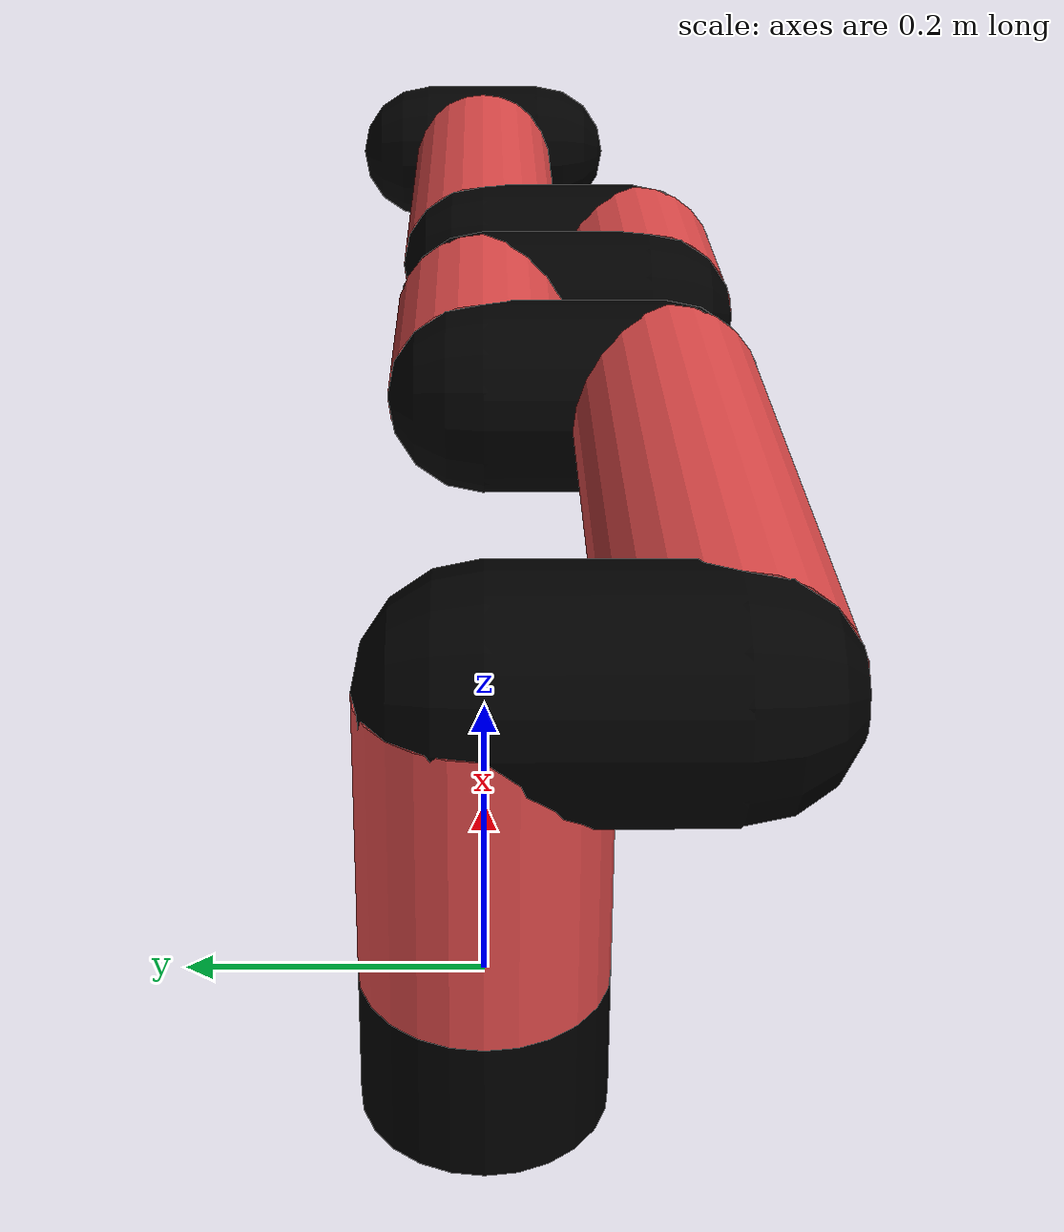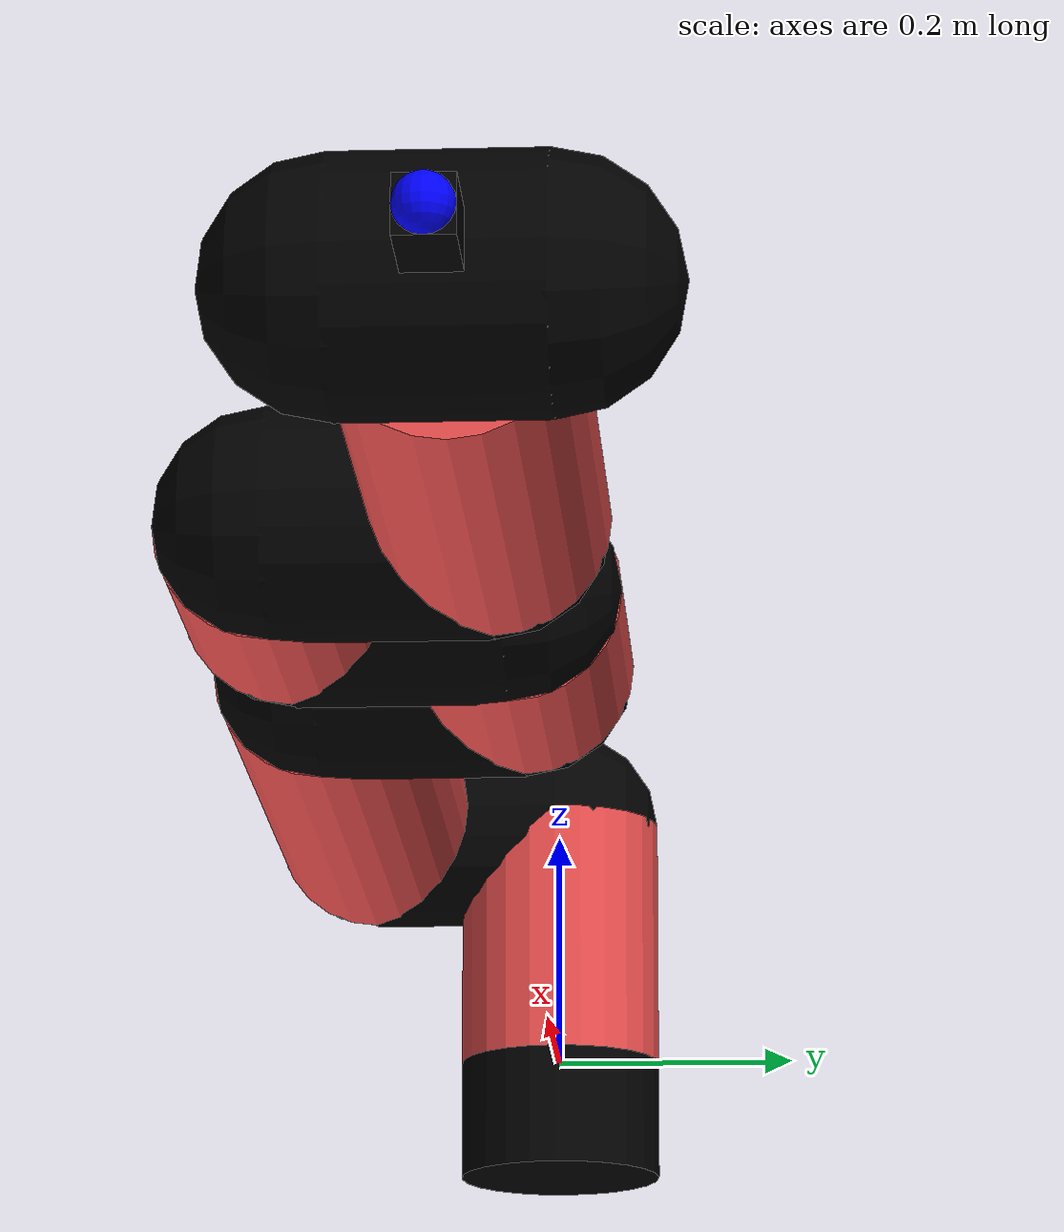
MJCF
<mujoco model="manipulator">
		<compiler angle="degree" coordinate="local" inertiafromgeom="auto" meshdir="meshes/"/>
		<option gravity="0 0 0" integrator="RK4" iterations="30" timestep="0.01"/>

		<default>
		<joint armature="1" limited="true" stiffness="10" damping="15" frictionloss="5.0"/>
		<geom conaffinity="1" condim="3" contype="1" friction=".5 .1 .1" margin="0.002"/>
		<motor ctrllimited="true"/>
		<position ctrllimited="true"/>
		</default>

		<asset>
		<texture builtin="gradient" height="100" rgb1="1.0 1.0 1.0" rgb2="1.0 1.0 1.0" type="skybox" width="100"/>
		<texture builtin="flat" height="32" name="arm_tex" rgb1="0.9 0.3 0.3" type="2d" width="32"/>
		<texture builtin="flat" height="32" name="gripper_tex" rgb1="0.0 0.0 0.0" type="cube" width="32"/>

		<material name="arm_mat" shininess="0.1" specular="0.1" texture="arm_tex"/>
		<material name="gripper_mat" shininess="1" specular="1" texture="gripper_tex"/>
		</asset>

		<worldbody>
		<light cutoff="45" diffuse=".8 .8 .8" dir="0 0.16 -1" directional="false" name="light" pos="0 -2.0 8.0" specular="0.3 0.3 0.3"/>

		<body name="base_link" pos="0 0 -0.1">
		<geom fromto="0 0 0 0 0 0.1" material="arm_mat" name="base_link" rgba="0.0 0.0 0.0 1" size="0.085" type="cylinder"/>
		</body>

		<body name="l1" pos="0 0 0">
<geom fromto="0 0 0 0 0 0.21" material="arm_mat" name="l1" rgba="0.9 0.3 0.3 1" size="0.085" type="cylinder"/>
<geom fromto="0 0 0.21 0 -0.16 0.21" material="arm_mat" name="l1_ex" rgba="0.0 0.0 0.0 1" size="0.085" type="capsule"/>
<joint axis="0 0 1" name="j1" pos="0 0 0" range="-90 90" damping="12.73" frictionloss="6.93"/>

<body name="l2" pos="0 -0.16 0.21">
<geom fromto="0 0 0 0.53 0 0" material="arm_mat" name="l2" rgba="0.9 0.3 0.3 1" size="0.085" type="cylinder"/>
<geom fromto="0.53 0 0 0.53 0.16 0" material="arm_mat" name="l2_ex" rgba="0.0 0.0 0.0 1" size="0.085" type="capsule"/>
<joint axis="0.0 1.0 0.0" name="j2" pos="0 0 0" range="-90 60" damping="14.55" frictionloss="4.9"/>

<body name="l3" pos="0.53 0.16 0">
<geom fromto="0 0 0 0.22 0 0" material="arm_mat" name="l3" rgba="0.9 0.3 0.3 1" size="0.085" type="cylinder"/>
<geom fromto="0.22 0 0 0.22 -0.16 0" material="arm_mat" name="l3_ex" rgba="0.0 0.0 0.0 1" size="0.085" type="capsule"/>
<joint axis="0.0 1.0 0.0" name="j3" pos="0 0 0" range="-30 60" damping="40.52" frictionloss="9.92"/>

<body name="l4" pos="0.22 -0.16 0">
<geom fromto="0 0 0 0.18 0 0" material="arm_mat" name="l4" rgba="0.9 0.3 0.3 1" size="0.085" type="cylinder"/>
<geom fromto="0.18 0 0 0.18 0.16 0" material="arm_mat" name="l4_ex" rgba="0.0 0.0 0.0 1" size="0.085" type="capsule"/>
<joint axis="0.0 1.0 0.0" name="j4" pos="0 0 0" range="-30 60" damping="30.05" frictionloss="13.54"/>

<body name="l5" pos="0.18 0.16 0">
<geom fromto="0 0 0 0.46 0 0" material="arm_mat" name="l5" rgba="0.9 0.3 0.3 1" size="0.085" type="cylinder"/>
<joint axis="0.0 1.0 0.0" name="j5" pos="0 0 0" range="-30 60" damping="18.24" frictionloss="13.31"/>

<body name="gripper" pos="0.46 0 0">
<geom fromto="0.05 -0.07 0 0.05 0.07 0" material="gripper_mat" name="gripper" rgba="0.0 0.0 0.0 1" size="0.085" type="capsule"/><joint axis="1 0 0" name="j6" pos="0 0 0" range="-90 90" damping="15" frictionloss="5.0"/><body name="finger" pos="0.1 0 0">
<geom fromto="0 0.0 0 0.1 0.0 0" material="gripper_mat" name="finger" rgba="0.0 0.0 0.0 1" size="0.020 0.06 0.06" type="box"/>
</body>
<site name="current" pos="0.2 0. 0.0" rgba="0. 0. 1.0 1" size="0.02" type="sphere"/>
</body>
</body>
</body>
</body>
</body>
</body>
</worldbody>
<actuator>
<motor ctrllimited="true" ctrlrange="-1.0 1.0" joint="j1" gear="38.94"/>
<motor ctrllimited="true" ctrlrange="-1.0 1.0" joint="j2" gear="93.0"/>
<motor ctrllimited="true" ctrlrange="-1.0 1.0" joint="j3" gear="114.81"/>
<motor ctrllimited="true" ctrlrange="-1.0 1.0" joint="j4" gear="39.4"/>
<motor ctrllimited="true" ctrlrange="-1.0 1.0" joint="j5" gear="126.55"/>
<motor ctrllimited="true" ctrlrange="-1.0 1.0" joint="j6" gear="80"/>
</actuator>
</mujoco>
